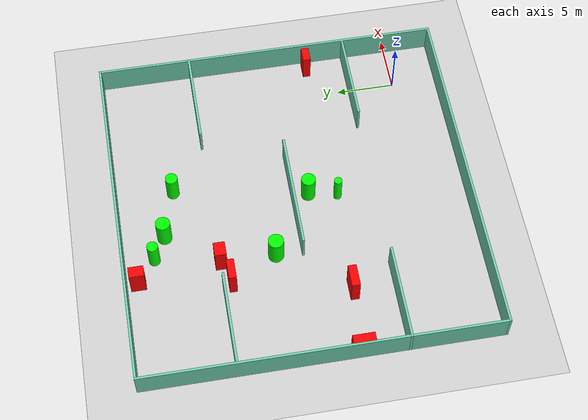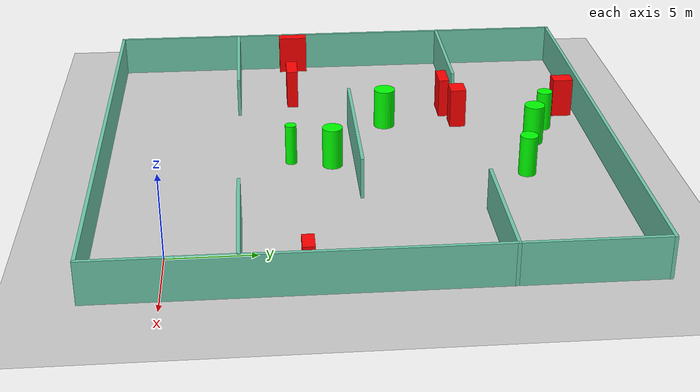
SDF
<sdf version="1.7">
 <world name="default">
  <light name="sun" type="directional">
   <pose>0 0 10 0 -0 0</pose>
   <diffuse>0.8 0.8 0.8 1</diffuse>
   <specular>0.2 0.2 0.2 1</specular>
   <attenuation>
    <range>1000</range>
    <constant>0.9</constant>
    <linear>0.01</linear>
    <quadratic>0.001</quadratic>
   </attenuation>
   <direction>-0.5 0.1 -0.9</direction>
   <spot><inner_angle>0</inner_angle><outer_angle>0</outer_angle><falloff>0</falloff></spot>
  </light>
  <model name="ground_plane">
   <static>1</static>
   <link name="link">
    <collision name="collision">
     <geometry><plane><normal>0 0 1</normal><size>100 100</size></plane></geometry>
     <surface>
      <contact><collide_bitmask>65535</collide_bitmask></contact>
      <friction><ode><mu>100</mu><mu2>50</mu2></ode></friction>
     </surface>
    </collision>
    <visual name="visual">
     <cast_shadows>0</cast_shadows>
     <geometry><plane><normal>0 0 1</normal><size>100 100</size></plane></geometry>
     <material>
      <script><uri>file://media/materials/scripts/gazebo.material</uri><name>Gazebo/Grey</name></script>
     </material>
    </visual>
   </link>
  </model>
  <gravity>0 0 -9.8</gravity>
  <magnetic_field>6e-06 2.3e-05 -4.2e-05</magnetic_field>
  <atmosphere type="adiabatic"/>
  <physics type="ode">
   <max_step_size>0.001</max_step_size>
   <real_time_factor>1</real_time_factor>
   <real_time_update_rate>1000</real_time_update_rate>
  </physics>
  <scene><ambient>0.4 0.4 0.4 1</ambient><background>0.7 0.7 0.7 1</background><shadows>1</shadows></scene>
  <spherical_coordinates>
   <surface_model>EARTH_WGS84</surface_model>
   <latitude_deg>0</latitude_deg>
   <longitude_deg>0</longitude_deg>
   <elevation>0</elevation>
   <heading_deg>0</heading_deg>
  </spherical_coordinates>
  <model name="my_base_walls">
   <link name="Wall_10">
    <collision name="Wall_10_Collision">
     <geometry><box><size>8.2 0.2 2.5</size></box></geometry>
     <pose>0 0 1.25 0 -0 0</pose>
    </collision>
    <visual name="Wall_10_Visual">
     <pose>0 0 1.25 0 -0 0</pose>
     <geometry><box><size>8.2 0.2 2.5</size></box></geometry>
     <material>
      <script><uri>file://media/materials/scripts/gazebo.material</uri><name>Gazebo/Grey</name></script>
      <ambient>0.435294 0.796078 0.67451 1</ambient>
     </material>
     <meta><layer>0</layer></meta>
    </visual>
    <pose>-11 -7 0 0 -0 0</pose>
   </link>
   <link name="Wall_12">
    <collision name="Wall_12_Collision">
     <geometry><box><size>8.2 0.2 2.5</size></box></geometry>
     <pose>0 0 1.25 0 -0 0</pose>
    </collision>
    <visual name="Wall_12_Visual">
     <pose>0 0 1.25 0 -0 0</pose>
     <geometry><box><size>8.2 0.2 2.5</size></box></geometry>
     <material>
      <script><uri>file://media/materials/scripts/gazebo.material</uri><name>Gazebo/Grey</name></script>
      <ambient>0.435294 0.796078 0.67451 1</ambient>
     </material>
     <meta><layer>0</layer></meta>
    </visual>
    <pose>-11 7 0 0 -0 0</pose>
   </link>
   <link name="Wall_14">
    <collision name="Wall_14_Collision">
     <geometry><box><size>8.2 0.2 2.5</size></box></geometry>
     <pose>0 0 1.25 0 -0 0</pose>
    </collision>
    <visual name="Wall_14_Visual">
     <pose>0 0 1.25 0 -0 0</pose>
     <geometry><box><size>8.2 0.2 2.5</size></box></geometry>
     <material>
      <script><uri>file://media/materials/scripts/gazebo.material</uri><name>Gazebo/Grey</name></script>
      <ambient>0.435294 0.796078 0.67451 1</ambient>
     </material>
     <meta><layer>0</layer></meta>
    </visual>
    <pose>11 7 0 0 -0 3.14159</pose>
   </link>
   <link name="Wall_16">
    <collision name="Wall_16_Collision">
     <geometry><box><size>10.2 0.2 2.5</size></box></geometry>
     <pose>0 0 1.25 0 -0 0</pose>
    </collision>
    <visual name="Wall_16_Visual">
     <pose>0 0 1.25 0 -0 0</pose>
     <geometry><box><size>10.2 0.2 2.5</size></box></geometry>
     <material>
      <script><uri>file://media/materials/scripts/gazebo.material</uri><name>Gazebo/Grey</name></script>
      <ambient>0.435294 0.796078 0.67451 1</ambient>
     </material>
     <meta><layer>0</layer></meta>
    </visual>
    <pose>0 0 0 0 -0 3.14159</pose>
   </link>
   <link name="Wall_2">
    <collision name="Wall_2_Collision">
     <geometry><box><size>30.2 0.2 2.5</size></box></geometry>
     <pose>0 0 1.25 0 -0 0</pose>
    </collision>
    <visual name="Wall_2_Visual">
     <pose>0 0 1.25 0 -0 0</pose>
     <geometry><box><size>30.2 0.2 2.5</size></box></geometry>
     <material>
      <script><uri>file://media/materials/scripts/gazebo.material</uri><name>Gazebo/Grey</name></script>
      <ambient>0.435294 0.796078 0.67451 1</ambient>
     </material>
     <meta><layer>0</layer></meta>
    </visual>
    <pose>0 -15 0 0 -0 3.14159</pose>
   </link>
   <link name="Wall_3">
    <collision name="Wall_3_Collision">
     <geometry><box><size>30.2 0.2 2.5</size></box></geometry>
     <pose>0 0 1.25 0 -0 0</pose>
    </collision>
    <visual name="Wall_3_Visual">
     <pose>0 0 1.25 0 -0 0</pose>
     <geometry><box><size>30.2 0.2 2.5</size></box></geometry>
     <material>
      <script><uri>file://media/materials/scripts/gazebo.material</uri><name>Gazebo/Grey</name></script>
      <ambient>0.435294 0.796078 0.67451 1</ambient>
     </material>
     <meta><layer>0</layer></meta>
    </visual>
    <pose>-15 0 0 0 -0 1.5708</pose>
   </link>
   <link name="Wall_4">
    <collision name="Wall_4_Collision">
     <geometry><box><size>30.2 0.2 2.5</size></box></geometry>
     <pose>0 0 1.25 0 -0 0</pose>
    </collision>
    <visual name="Wall_4_Visual">
     <pose>0 0 1.25 0 -0 0</pose>
     <geometry><box><size>30.2 0.2 2.5</size></box></geometry>
     <material>
      <script><uri>file://media/materials/scripts/gazebo.material</uri><name>Gazebo/Grey</name></script>
      <ambient>0.435294 0.796078 0.67451 1</ambient>
     </material>
     <meta><layer>0</layer></meta>
    </visual>
    <pose>0 15 0 0 -0 0</pose>
   </link>
   <link name="Wall_6">
    <collision name="Wall_6_Collision">
     <geometry><box><size>30.2 0.2 2.5</size></box></geometry>
     <pose>0 0 1.25 0 -0 0</pose>
    </collision>
    <visual name="Wall_6_Visual">
     <pose>0 0 1.25 0 -0 0</pose>
     <geometry><box><size>30.2 0.2 2.5</size></box></geometry>
     <material>
      <script><uri>file://media/materials/scripts/gazebo.material</uri><name>Gazebo/Grey</name></script>
      <ambient>0.435294 0.796078 0.67451 1</ambient>
     </material>
     <meta><layer>0</layer></meta>
    </visual>
    <pose>15 0 0 0 -0 1.5708</pose>
   </link>
   <link name="Wall_8">
    <collision name="Wall_8_Collision">
     <geometry><box><size>8.2 0.2 2.5</size></box></geometry>
     <pose>0 0 1.25 0 -0 0</pose>
    </collision>
    <visual name="Wall_8_Visual">
     <pose>0 0 1.25 0 -0 0</pose>
     <geometry><box><size>8.2 0.2 2.5</size></box></geometry>
     <material>
      <script><uri>file://media/materials/scripts/gazebo.material</uri><name>Gazebo/Grey</name></script>
      <ambient>0.435294 0.796078 0.67451 1</ambient>
     </material>
     <meta><layer>0</layer></meta>
    </visual>
    <pose>11 -7 0 0 -0 3.14159</pose>
   </link>
   <static>1</static>
   <pose>-11 11 0 0 -0 0</pose>
  </model>
  <model name="cylinder1">
   <static>1</static>
   <link name="link">
    <inertial>
     <mass>1</mass>
     <inertia><ixx>0.5</ixx><ixy>0</ixy><ixz>0</ixz><iyy>0.5</iyy><iyz>0</iyz><izz>1</izz></inertia>
    </inertial>
    <collision name="collision">
     <geometry><cylinder><radius>0.4803705096574672</radius><length>2.5</length></cylinder></geometry>
    </collision>
    <visual name="visual">
     <geometry><cylinder><radius>0.4803705096574672</radius><length>2.5</length></cylinder></geometry>
     <material>
      <ambient>0 1 0 1</ambient>
      <diffuse>0 1 0 1</diffuse>
      <specular>0.1 0.1 0.1 1</specular>
      <emissive>0 0 0 0</emissive>
     </material>
    </visual>
   </link>
   <pose>-14.562350283948192 23.38420167279265 1.25 0 0 0</pose>
  </model>
  <model name="cylinder2">
   <static>1</static>
   <link name="link">
    <inertial>
     <mass>1</mass>
     <inertia><ixx>0.5</ixx><ixy>0</ixy><ixz>0</ixz><iyy>0.5</iyy><iyz>0</iyz><izz>1</izz></inertia>
    </inertial>
    <collision name="collision">
     <geometry><cylinder><radius>0.6629703750938503</radius><length>2.5</length></cylinder></geometry>
    </collision>
    <visual name="visual">
     <geometry><cylinder><radius>0.6629703750938503</radius><length>2.5</length></cylinder></geometry>
     <material>
      <ambient>0 1 0 1</ambient>
      <diffuse>0 1 0 1</diffuse>
      <specular>0.1 0.1 0.1 1</specular>
      <emissive>0 0 0 0</emissive>
     </material>
    </visual>
   </link>
   <pose>-15.740351909222836 13.265636962391206 1.25 0 0 0</pose>
  </model>
  <model name="cylinder3">
   <static>1</static>
   <link name="link">
    <inertial>
     <mass>1</mass>
     <inertia><ixx>0.5</ixx><ixy>0</ixy><ixz>0</ixz><iyy>0.5</iyy><iyz>0</iyz><izz>1</izz></inertia>
    </inertial>
    <collision name="collision">
     <geometry><cylinder><radius>0.34397521151697497</radius><length>2.5</length></cylinder></geometry>
    </collision>
    <visual name="visual">
     <geometry><cylinder><radius>0.34397521151697497</radius><length>2.5</length></cylinder></geometry>
     <material>
      <ambient>0 1 0 1</ambient>
      <diffuse>0 1 0 1</diffuse>
      <specular>0.1 0.1 0.1 1</specular>
      <emissive>0 0 0 0</emissive>
     </material>
    </visual>
   </link>
   <pose>-10.81772843281087 7.107502587127685 1.25 0 0 0</pose>
  </model>
  <model name="cylinder4">
   <static>1</static>
   <link name="link">
    <inertial>
     <mass>1</mass>
     <inertia><ixx>0.5</ixx><ixy>0</ixy><ixz>0</ixz><iyy>0.5</iyy><iyz>0</iyz><izz>1</izz></inertia>
    </inertial>
    <collision name="collision">
     <geometry><cylinder><radius>0.6094174674367512</radius><length>2.5</length></cylinder></geometry>
    </collision>
    <visual name="visual">
     <geometry><cylinder><radius>0.6094174674367512</radius><length>2.5</length></cylinder></geometry>
     <material>
      <ambient>0 1 0 1</ambient>
      <diffuse>0 1 0 1</diffuse>
      <specular>0.1 0.1 0.1 1</specular>
      <emissive>0 0 0 0</emissive>
     </material>
    </visual>
   </link>
   <pose>-10.261732519590872 9.574851059930758 1.25 0 0 0</pose>
  </model>
  <model name="cylinder5">
   <static>1</static>
   <link name="link">
    <inertial>
     <mass>1</mass>
     <inertia><ixx>0.5</ixx><ixy>0</ixy><ixz>0</ixz><iyy>0.5</iyy><iyz>0</iyz><izz>1</izz></inertia>
    </inertial>
    <collision name="collision">
     <geometry><cylinder><radius>0.5295040043139626</radius><length>2.5</length></cylinder></geometry>
    </collision>
    <visual name="visual">
     <geometry><cylinder><radius>0.5295040043139626</radius><length>2.5</length></cylinder></geometry>
     <material>
      <ambient>0 1 0 1</ambient>
      <diffuse>0 1 0 1</diffuse>
      <specular>0.1 0.1 0.1 1</specular>
      <emissive>0 0 0 0</emissive>
     </material>
    </visual>
   </link>
   <pose>-8.242826718330273 21.064190835418128 1.25 0 0 0</pose>
  </model>
  <model name="cylinder6">
   <static>1</static>
   <link name="link">
    <inertial>
     <mass>1</mass>
     <inertia><ixx>0.5</ixx><ixy>0</ixy><ixz>0</ixz><iyy>0.5</iyy><iyz>0</iyz><izz>1</izz></inertia>
    </inertial>
    <collision name="collision">
     <geometry><cylinder><radius>0.623986647914129</radius><length>2.5</length></cylinder></geometry>
    </collision>
    <visual name="visual">
     <geometry><cylinder><radius>0.623986647914129</radius><length>2.5</length></cylinder></geometry>
     <material>
      <ambient>0 1 0 1</ambient>
      <diffuse>0 1 0 1</diffuse>
      <specular>0.1 0.1 0.1 1</specular>
      <emissive>0 0 0 0</emissive>
     </material>
    </visual>
   </link>
   <pose>-12.517791386622436 22.295203581063056 1.25 0 0 0</pose>
  </model>
  <model name="box1">
   <static>1</static>
   <link name="link">
    <inertial>
     <mass>1</mass>
     <inertia><ixx>0.083</ixx><ixy>0</ixy><ixz>0</ixz><iyy>0.083</iyy><iyz>0</iyz><izz>0.083</izz></inertia>
    </inertial>
    <collision name="collision">
     <geometry><box><size>0.7179673478924823 1.8614611074992806 2.5</size></box></geometry>
    </collision>
    <visual name="visual">
     <geometry><box><size>0.7179673478924823 1.8614611074992806 2.5</size></box></geometry>
     <material>
      <ambient>1 0 0 1</ambient>
      <diffuse>1 0 0 1</diffuse>
      <specular>0.1 0.1 0.1 1</specular>
      <emissive>0 0 0 0</emissive>
     </material>
    </visual>
    <sensor name="my_contact" type="contact">
     <contact><collision>box_collision</collision><topic>__default_topic__</topic></contact>
    </sensor>
   </link>
   <pose>-25.567152605319308 7.767985534484916 1.25 0 0 0</pose>
  </model>
  <model name="box2">
   <static>1</static>
   <link name="link">
    <inertial>
     <mass>1</mass>
     <inertia><ixx>0.083</ixx><ixy>0</ixy><ixz>0</ixz><iyy>0.083</iyy><iyz>0</iyz><izz>0.083</izz></inertia>
    </inertial>
    <collision name="collision">
     <geometry><box><size>0.9407139022384128 1.2692485218640586 2.5</size></box></geometry>
    </collision>
    <visual name="visual">
     <geometry><box><size>0.9407139022384128 1.2692485218640586 2.5</size></box></geometry>
     <material>
      <ambient>1 0 0 1</ambient>
      <diffuse>1 0 0 1</diffuse>
      <specular>0.1 0.1 0.1 1</specular>
      <emissive>0 0 0 0</emissive>
     </material>
    </visual>
    <sensor name="my_contact" type="contact">
     <contact><collision>box_collision</collision><topic>__default_topic__</topic></contact>
    </sensor>
   </link>
   <pose>-16.664383871690678 24.960932400395436 1.25 0 0 0</pose>
  </model>
  <model name="box3">
   <static>1</static>
   <link name="link">
    <inertial>
     <mass>1</mass>
     <inertia><ixx>0.083</ixx><ixy>0</ixy><ixz>0</ixz><iyy>0.083</iyy><iyz>0</iyz><izz>0.083</izz></inertia>
    </inertial>
    <collision name="collision">
     <geometry><box><size>1.7715095890858357 0.6475104667421997 2.5</size></box></geometry>
    </collision>
    <visual name="visual">
     <geometry><box><size>1.7715095890858357 0.6475104667421997 2.5</size></box></geometry>
     <material>
      <ambient>1 0 0 1</ambient>
      <diffuse>1 0 0 1</diffuse>
      <specular>0.1 0.1 0.1 1</specular>
      <emissive>0 0 0 0</emissive>
     </material>
    </visual>
    <sensor name="my_contact" type="contact">
     <contact><collision>box_collision</collision><topic>__default_topic__</topic></contact>
    </sensor>
   </link>
   <pose>-17.667591866270158 17.26152428616304 1.25 0 0 0</pose>
  </model>
  <model name="box4">
   <static>1</static>
   <link name="link">
    <inertial>
     <mass>1</mass>
     <inertia><ixx>0.083</ixx><ixy>0</ixy><ixz>0</ixz><iyy>0.083</iyy><iyz>0</iyz><izz>0.083</izz></inertia>
    </inertial>
    <collision name="collision">
     <geometry><box><size>1.8958784385791703 0.7078275176150959 2.5</size></box></geometry>
    </collision>
    <visual name="visual">
     <geometry><box><size>1.8958784385791703 0.7078275176150959 2.5</size></box></geometry>
     <material>
      <ambient>1 0 0 1</ambient>
      <diffuse>1 0 0 1</diffuse>
      <specular>0.1 0.1 0.1 1</specular>
      <emissive>0 0 0 0</emissive>
     </material>
    </visual>
    <sensor name="my_contact" type="contact">
     <contact><collision>box_collision</collision><topic>__default_topic__</topic></contact>
    </sensor>
   </link>
   <pose>-19.958046744247923 7.503680014682272 1.25 0 0 0</pose>
  </model>
  <model name="box5">
   <static>1</static>
   <link name="link">
    <inertial>
     <mass>1</mass>
     <inertia><ixx>0.083</ixx><ixy>0</ixy><ixz>0</ixz><iyy>0.083</iyy><iyz>0</iyz><izz>0.083</izz></inertia>
    </inertial>
    <collision name="collision">
     <geometry><box><size>1.3013173250465484 0.6626251614218154 2.5</size></box></geometry>
    </collision>
    <visual name="visual">
     <geometry><box><size>1.3013173250465484 0.6626251614218154 2.5</size></box></geometry>
     <material>
      <ambient>1 0 0 1</ambient>
      <diffuse>1 0 0 1</diffuse>
      <specular>0.1 0.1 0.1 1</specular>
      <emissive>0 0 0 0</emissive>
     </material>
    </visual>
    <sensor name="my_contact" type="contact">
     <contact><collision>box_collision</collision><topic>__default_topic__</topic></contact>
    </sensor>
   </link>
   <pose>2.9508251361283477 7.5021118260824124 1.25 0 0 0</pose>
  </model>
  <model name="box6">
   <static>1</static>
   <link name="link">
    <inertial>
     <mass>1</mass>
     <inertia><ixx>0.083</ixx><ixy>0</ixy><ixz>0</ixz><iyy>0.083</iyy><iyz>0</iyz><izz>0.083</izz></inertia>
    </inertial>
    <collision name="collision">
     <geometry><box><size>1.2277319575168208 0.9861001823230211 2.5</size></box></geometry>
    </collision>
    <visual name="visual">
     <geometry><box><size>1.2277319575168208 0.9861001823230211 2.5</size></box></geometry>
     <material>
      <ambient>1 0 0 1</ambient>
      <diffuse>1 0 0 1</diffuse>
      <specular>0.1 0.1 0.1 1</specular>
      <emissive>0 0 0 0</emissive>
     </material>
    </visual>
    <sensor name="my_contact" type="contact">
     <contact><collision>box_collision</collision><topic>__default_topic__</topic></contact>
    </sensor>
   </link>
   <pose>-15.690824430568872 17.93975174084009 1.25 0 0 0</pose>
  </model>
 </world>
</sdf>
